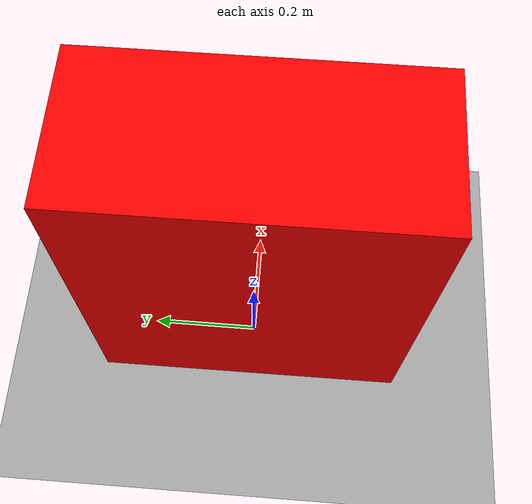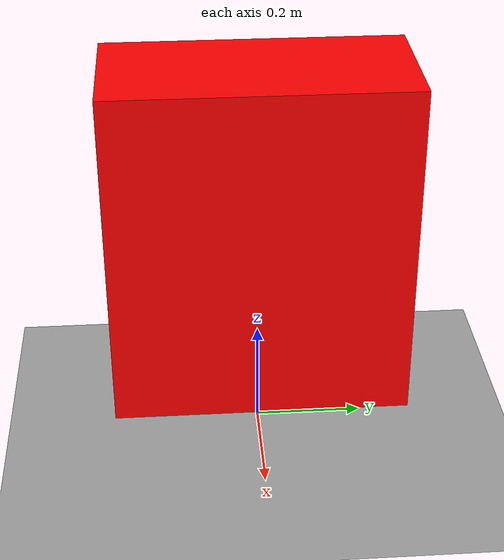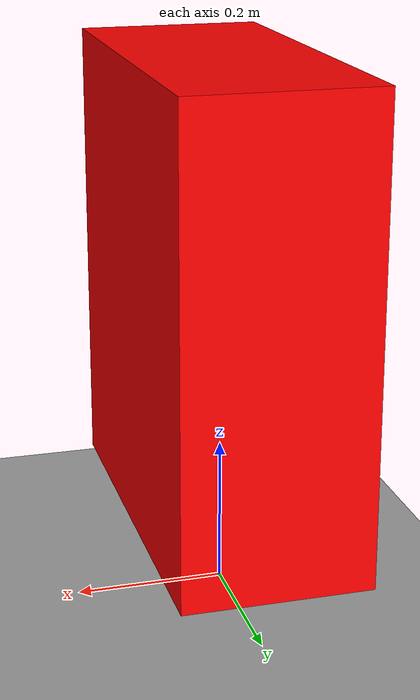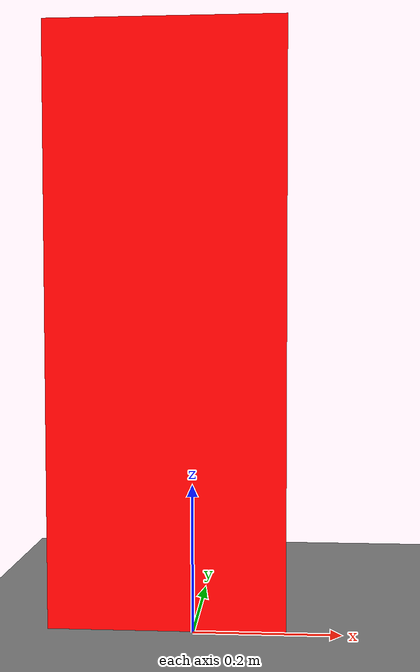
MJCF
<?xml version="1.0"?>
<mujoco model="pallet_jack_forward_drive">
  <compiler angle="degree" inertiafromgeom="true"/>
  <option gravity="0 0 -9.81"/>

  <asset>
    <material name="jack_mat" rgba="1 0 0 1" specular="0.2" shininess="0.3"/>
    <texture name="checker" type="2d" builtin="checker"
             rgb1="0.95 0.95 0.95" rgb2="0.3 0.3 0.3"
             width="512" height="512"/>
    <material name="floor_mat"
              texture="checker"
              texrepeat="10 10"
              specular="0.3"
              shininess="0.7"
              reflectance="0.2"/>
  </asset>
  <default>
    <geom density="500"/>
  </default>

  <worldbody>
    <geom type="plane" size="10 10 0.1" material="floor_mat"/>

    <!-- ルート：ここで旋回ジョイント -->
    <body name="jack_root" pos="0 0 0">
      <!-- ハンドル操作で向きを変える -->
      <joint name="steer"   type="hinge" axis="0 0 1" range="-180 180"/>

      <!-- ローカルX（前方）に沿ってスライド -->
      <body name="jack_driving_frame" pos="0 0 0">
        <joint name="drive" type="slide" axis="1 0 0" range="-inf inf"/>

        <!-- ジオメトリ本体 -->
        <body name="pallet_jack" pos="0 0 0.1">
          <geom name="base" type="box" size="0.125 0.27 0.315"
                pos="0 0 0.315" material="jack_mat"/>
          <!-- フォーク等はここに… -->
        </body>
      </body>
    </body>
  </worldbody>

  <actuator>
    <!-- ステア（旋回） -->
    <position joint="steer" ctrlrange="-90 90" kp="200"/>
    <!-- 前進／後退 -->
    <position joint="drive" ctrlrange="-2 2"  kp="500"/>
    <!-- 必要ならフォーク昇降・回転もここに -->
  </actuator>
</mujoco>
